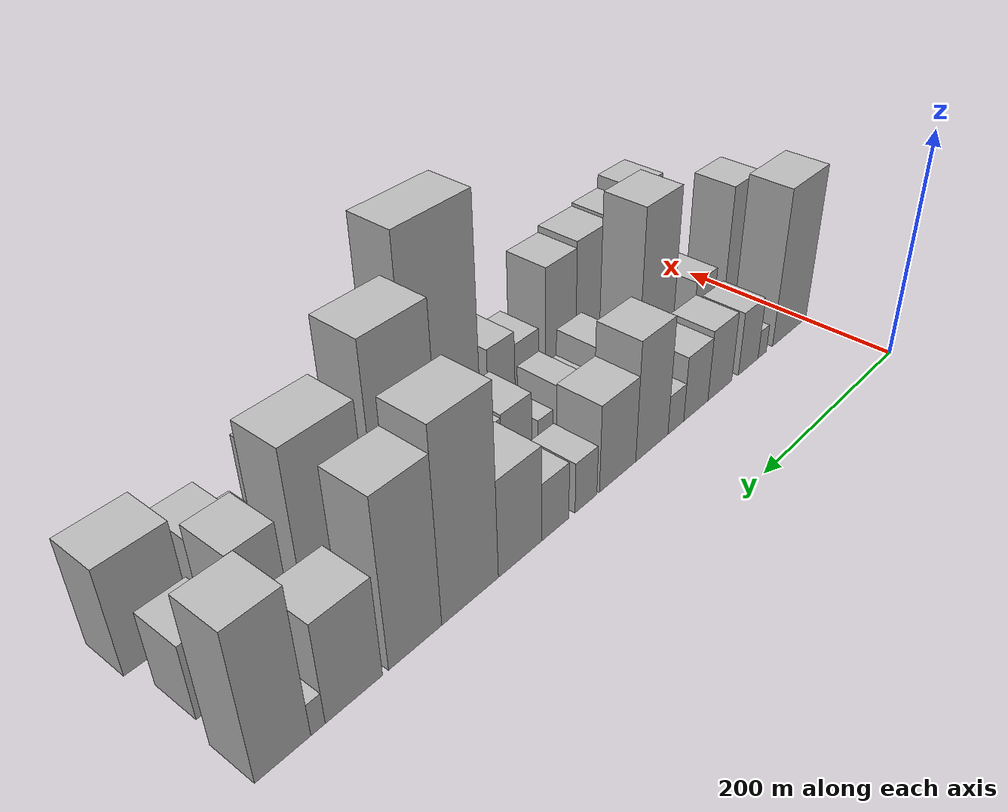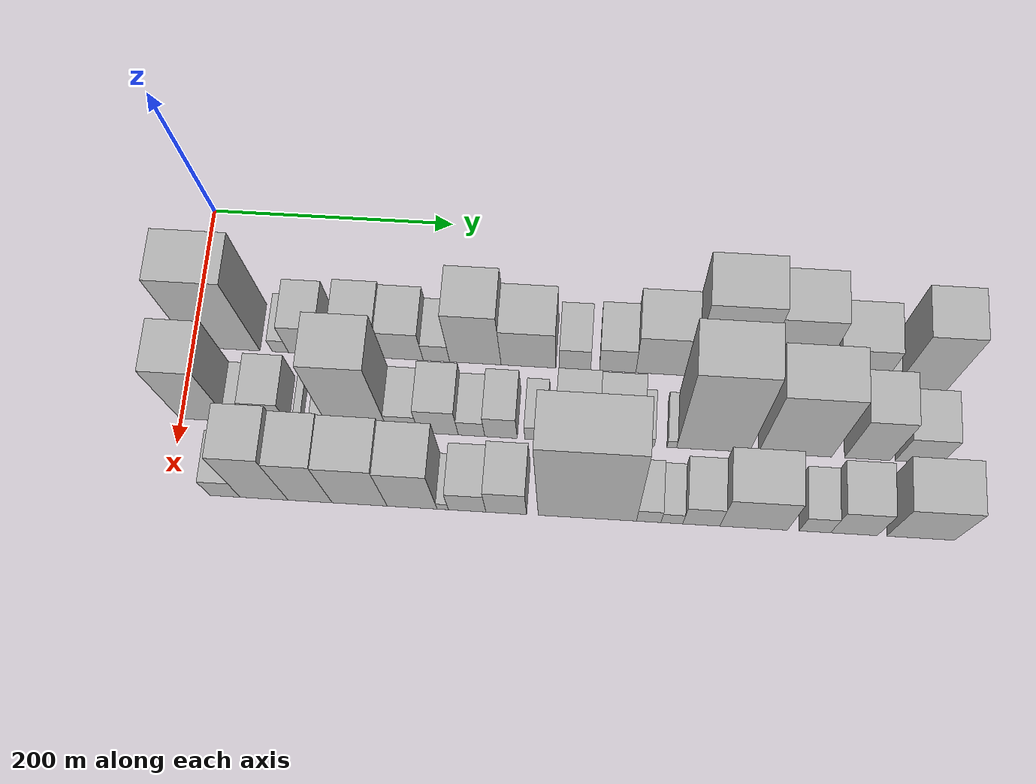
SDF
<sdf version="1.6">
 <world name="default">
  <model name="building_14">
   <static>1</static>
   <pose>100.0000 26.7737 0 0.000000 0.000000 0.000000</pose>
   <link name="link">
    <pose>0 0 73.50 0 0 0</pose>
    <collision name="collision"><geometry><box><size>40.0000 55.8390 147.0000</size></box></geometry></collision>
    <visual name="visual">
     <cast_shadows>0</cast_shadows>
     <geometry><box><size>40.0000 55.8390 147.0000</size></box></geometry>
     <material>
      <script>
       <uri>model://HANNAS_wall/materials/scripts</uri>
       <uri>model://HANNAS_wall/materials/textures</uri>
       <name>vrc/HANNAS_wall</name>
      </script>
     </material>
    </visual>
   </link>
  </model>
  <model name="building_15">
   <static>1</static>
   <pose>100.0000 71.2728 0 0.000000 0.000000 0.000000</pose>
   <link name="link">
    <pose>0 0 13.50 0 0 0</pose>
    <collision name="collision"><geometry><box><size>40.0000 13.1591 27.0000</size></box></geometry></collision>
    <visual name="visual">
     <cast_shadows>0</cast_shadows>
     <geometry><box><size>40.0000 13.1591 27.0000</size></box></geometry>
     <material>
      <script>
       <uri>model://HANNAS_wall/materials/scripts</uri>
       <uri>model://HANNAS_wall/materials/textures</uri>
       <name>vrc/HANNAS_wall</name>
      </script>
     </material>
    </visual>
   </link>
  </model>
  <model name="building_16">
   <static>1</static>
   <pose>100.0000 93.0331 0 0.000000 0.000000 0.000000</pose>
   <link name="link">
    <pose>0 0 30.00 0 0 0</pose>
    <collision name="collision"><geometry><box><size>40.0000 30.3615 60.0000</size></box></geometry></collision>
    <visual name="visual">
     <cast_shadows>0</cast_shadows>
     <geometry><box><size>40.0000 30.3615 60.0000</size></box></geometry>
     <material>
      <script>
       <uri>model://HANNAS_wall/materials/scripts</uri>
       <uri>model://HANNAS_wall/materials/textures</uri>
       <name>vrc/HANNAS_wall</name>
      </script>
     </material>
    </visual>
   </link>
  </model>
  <model name="building_17">
   <static>1</static>
   <pose>100.0000 135.6121 0 0.000000 0.000000 0.000000</pose>
   <link name="link">
    <pose>0 0 33.00 0 0 0</pose>
    <collision name="collision"><geometry><box><size>40.0000 34.7966 66.0000</size></box></geometry></collision>
    <visual name="visual">
     <cast_shadows>0</cast_shadows>
     <geometry><box><size>40.0000 34.7966 66.0000</size></box></geometry>
     <material>
      <script>
       <uri>model://HANNAS_wall/materials/scripts</uri>
       <uri>model://HANNAS_wall/materials/textures</uri>
       <name>vrc/HANNAS_wall</name>
      </script>
     </material>
    </visual>
   </link>
  </model>
  <model name="building_18">
   <static>1</static>
   <pose>100.0000 169.8509 0 0.000000 0.000000 0.000000</pose>
   <link name="link">
    <pose>0 0 30.00 0 0 0</pose>
    <collision name="collision"><geometry><box><size>40.0000 33.6808 60.0000</size></box></geometry></collision>
    <visual name="visual">
     <cast_shadows>0</cast_shadows>
     <geometry><box><size>40.0000 33.6808 60.0000</size></box></geometry>
     <material>
      <script>
       <uri>model://HANNAS_wall/materials/scripts</uri>
       <uri>model://HANNAS_wall/materials/textures</uri>
       <name>vrc/HANNAS_wall</name>
      </script>
     </material>
    </visual>
   </link>
  </model>
  <model name="building_19">
   <static>1</static>
   <pose>100.0000 197.3704 0 0.000000 0.000000 0.000000</pose>
   <link name="link">
    <pose>0 0 18.00 0 0 0</pose>
    <collision name="collision"><geometry><box><size>40.0000 21.3583 36.0000</size></box></geometry></collision>
    <visual name="visual">
     <cast_shadows>0</cast_shadows>
     <geometry><box><size>40.0000 21.3583 36.0000</size></box></geometry>
     <material>
      <script>
       <uri>model://HANNAS_wall/materials/scripts</uri>
       <uri>model://HANNAS_wall/materials/textures</uri>
       <name>vrc/HANNAS_wall</name>
      </script>
     </material>
    </visual>
   </link>
  </model>
  <model name="building_20">
   <static>1</static>
   <pose>100.0000 228.7402 0 0.000000 0.000000 0.000000</pose>
   <link name="link">
    <pose>0 0 54.00 0 0 0</pose>
    <collision name="collision"><geometry><box><size>40.0000 41.3813 108.0000</size></box></geometry></collision>
    <visual name="visual">
     <cast_shadows>0</cast_shadows>
     <geometry><box><size>40.0000 41.3813 108.0000</size></box></geometry>
     <material>
      <script>
       <uri>model://HANNAS_wall/materials/scripts</uri>
       <uri>model://HANNAS_wall/materials/textures</uri>
       <name>vrc/HANNAS_wall</name>
      </script>
     </material>
    </visual>
   </link>
  </model>
  <model name="building_21">
   <static>1</static>
   <pose>100.0000 271.4339 0 0.000000 0.000000 0.000000</pose>
   <link name="link">
    <pose>0 0 39.00 0 0 0</pose>
    <collision name="collision"><geometry><box><size>40.0000 44.0061 78.0000</size></box></geometry></collision>
    <visual name="visual">
     <cast_shadows>0</cast_shadows>
     <geometry><box><size>40.0000 44.0061 78.0000</size></box></geometry>
     <material>
      <script>
       <uri>model://HANNAS_wall/materials/scripts</uri>
       <uri>model://HANNAS_wall/materials/textures</uri>
       <name>vrc/HANNAS_wall</name>
      </script>
     </material>
    </visual>
   </link>
  </model>
  <model name="building_22">
   <static>1</static>
   <pose>100.0000 308.9421 0 0.000000 0.000000 0.000000</pose>
   <link name="link">
    <pose>0 0 22.50 0 0 0</pose>
    <collision name="collision"><geometry><box><size>40.0000 25.0101 45.0000</size></box></geometry></collision>
    <visual name="visual">
     <cast_shadows>0</cast_shadows>
     <geometry><box><size>40.0000 25.0101 45.0000</size></box></geometry>
     <material>
      <script>
       <uri>model://HANNAS_wall/materials/scripts</uri>
       <uri>model://HANNAS_wall/materials/textures</uri>
       <name>vrc/HANNAS_wall</name>
      </script>
     </material>
    </visual>
   </link>
  </model>
  <model name="building_23">
   <static>1</static>
   <pose>100.0000 343.0104 0 0.000000 0.000000 0.000000</pose>
   <link name="link">
    <pose>0 0 25.50 0 0 0</pose>
    <collision name="collision"><geometry><box><size>40.0000 29.1266 51.0000</size></box></geometry></collision>
    <visual name="visual">
     <cast_shadows>0</cast_shadows>
     <geometry><box><size>40.0000 29.1266 51.0000</size></box></geometry>
     <material>
      <script>
       <uri>model://HANNAS_wall/materials/scripts</uri>
       <uri>model://HANNAS_wall/materials/textures</uri>
       <name>vrc/HANNAS_wall</name>
      </script>
     </material>
    </visual>
   </link>
  </model>
  <model name="building_24">
   <static>1</static>
   <pose>100.0000 380.0069 0 0.000000 0.000000 0.000000</pose>
   <link name="link">
    <pose>0 0 42.00 0 0 0</pose>
    <collision name="collision"><geometry><box><size>40.0000 44.8663 84.0000</size></box></geometry></collision>
    <visual name="visual">
     <cast_shadows>0</cast_shadows>
     <geometry><box><size>40.0000 44.8663 84.0000</size></box></geometry>
     <material>
      <script>
       <uri>model://HANNAS_wall/materials/scripts</uri>
       <uri>model://HANNAS_wall/materials/textures</uri>
       <name>vrc/HANNAS_wall</name>
      </script>
     </material>
    </visual>
   </link>
  </model>
  <model name="building_25">
   <static>1</static>
   <pose>100.0000 429.3852 0 0.000000 0.000000 0.000000</pose>
   <link name="link">
    <pose>0 0 81.00 0 0 0</pose>
    <collision name="collision"><geometry><box><size>40.0000 53.8903 162.0000</size></box></geometry></collision>
    <visual name="visual">
     <cast_shadows>0</cast_shadows>
     <geometry><box><size>40.0000 53.8903 162.0000</size></box></geometry>
     <material>
      <script>
       <uri>model://HANNAS_wall/materials/scripts</uri>
       <uri>model://HANNAS_wall/materials/textures</uri>
       <name>vrc/HANNAS_wall</name>
      </script>
     </material>
    </visual>
   </link>
  </model>
  <model name="building_26">
   <static>1</static>
   <pose>100.0000 479.6066 0 0.000000 0.000000 0.000000</pose>
   <link name="link">
    <pose>0 0 70.50 0 0 0</pose>
    <collision name="collision"><geometry><box><size>40.0000 46.5524 141.0000</size></box></geometry></collision>
    <visual name="visual">
     <cast_shadows>0</cast_shadows>
     <geometry><box><size>40.0000 46.5524 141.0000</size></box></geometry>
     <material>
      <script>
       <uri>model://HANNAS_wall/materials/scripts</uri>
       <uri>model://HANNAS_wall/materials/textures</uri>
       <name>vrc/HANNAS_wall</name>
      </script>
     </material>
    </visual>
   </link>
  </model>
  <model name="building_27">
   <static>1</static>
   <pose>100.0000 530.8130 0 0.000000 0.000000 0.000000</pose>
   <link name="link">
    <pose>0 0 42.00 0 0 0</pose>
    <collision name="collision"><geometry><box><size>40.0000 45.8605 84.0000</size></box></geometry></collision>
    <visual name="visual">
     <cast_shadows>0</cast_shadows>
     <geometry><box><size>40.0000 45.8605 84.0000</size></box></geometry>
     <material>
      <script>
       <uri>model://HANNAS_wall/materials/scripts</uri>
       <uri>model://HANNAS_wall/materials/textures</uri>
       <name>vrc/HANNAS_wall</name>
      </script>
     </material>
    </visual>
   </link>
  </model>
  <model name="building_28">
   <static>1</static>
   <pose>100.0000 559.2365 0 0.000000 0.000000 0.000000</pose>
   <link name="link">
    <pose>0 0 13.50 0 0 0</pose>
    <collision name="collision"><geometry><box><size>40.0000 10.9863 27.0000</size></box></geometry></collision>
    <visual name="visual">
     <cast_shadows>0</cast_shadows>
     <geometry><box><size>40.0000 10.9863 27.0000</size></box></geometry>
     <material>
      <script>
       <uri>model://HANNAS_wall/materials/scripts</uri>
       <uri>model://HANNAS_wall/materials/textures</uri>
       <name>vrc/HANNAS_wall</name>
      </script>
     </material>
    </visual>
   </link>
  </model>
  <model name="building_29">
   <static>1</static>
   <pose>100.0000 585.1890 0 0.000000 0.000000 0.000000</pose>
   <link name="link">
    <pose>0 0 61.50 0 0 0</pose>
    <collision name="collision"><geometry><box><size>40.0000 40.9187 123.0000</size></box></geometry></collision>
    <visual name="visual">
     <cast_shadows>0</cast_shadows>
     <geometry><box><size>40.0000 40.9187 123.0000</size></box></geometry>
     <material>
      <script>
       <uri>model://HANNAS_wall/materials/scripts</uri>
       <uri>model://HANNAS_wall/materials/textures</uri>
       <name>vrc/HANNAS_wall</name>
      </script>
     </material>
    </visual>
   </link>
  </model>
  <model name="building_48">
   <static>1</static>
   <pose>160.0000 18.8097 0 0.000000 0.000000 0.000000</pose>
   <link name="link">
    <pose>0 0 61.50 0 0 0</pose>
    <collision name="collision"><geometry><box><size>40.0000 39.7857 123.0000</size></box></geometry></collision>
    <visual name="visual">
     <cast_shadows>0</cast_shadows>
     <geometry><box><size>40.0000 39.7857 123.0000</size></box></geometry>
     <material>
      <script>
       <uri>model://HANNAS_wall/materials/scripts</uri>
       <uri>model://HANNAS_wall/materials/textures</uri>
       <name>vrc/HANNAS_wall</name>
      </script>
     </material>
    </visual>
   </link>
  </model>
  <model name="building_49">
   <static>1</static>
   <pose>160.0000 46.6663 0 0.000000 0.000000 0.000000</pose>
   <link name="link">
    <pose>0 0 15.00 0 0 0</pose>
    <collision name="collision"><geometry><box><size>40.0000 15.9276 30.0000</size></box></geometry></collision>
    <visual name="visual">
     <cast_shadows>0</cast_shadows>
     <geometry><box><size>40.0000 15.9276 30.0000</size></box></geometry>
     <material>
      <script>
       <uri>model://HANNAS_wall/materials/scripts</uri>
       <uri>model://HANNAS_wall/materials/textures</uri>
       <name>vrc/HANNAS_wall</name>
      </script>
     </material>
    </visual>
   </link>
  </model>
  <model name="building_50">
   <static>1</static>
   <pose>160.0000 70.1000 0 0.000000 0.000000 0.000000</pose>
   <link name="link">
    <pose>0 0 27.00 0 0 0</pose>
    <collision name="collision"><geometry><box><size>40.0000 30.9397 54.0000</size></box></geometry></collision>
    <visual name="visual">
     <cast_shadows>0</cast_shadows>
     <geometry><box><size>40.0000 30.9397 54.0000</size></box></geometry>
     <material>
      <script>
       <uri>model://HANNAS_wall/materials/scripts</uri>
       <uri>model://HANNAS_wall/materials/textures</uri>
       <name>vrc/HANNAS_wall</name>
      </script>
     </material>
    </visual>
   </link>
  </model>
  <model name="building_51">
   <static>1</static>
   <pose>160.0000 93.6140 0 0.000000 0.000000 0.000000</pose>
   <link name="link">
    <pose>0 0 7.50 0 0 0</pose>
    <collision name="collision"><geometry><box><size>40.0000 6.0884 15.0000</size></box></geometry></collision>
    <visual name="visual">
     <cast_shadows>0</cast_shadows>
     <geometry><box><size>40.0000 6.0884 15.0000</size></box></geometry>
     <material>
      <script>
       <uri>model://HANNAS_wall/materials/scripts</uri>
       <uri>model://HANNAS_wall/materials/textures</uri>
       <name>vrc/HANNAS_wall</name>
      </script>
     </material>
    </visual>
   </link>
  </model>
  <model name="building_52">
   <static>1</static>
   <pose>160.0000 111.6287 0 0.000000 0.000000 0.000000</pose>
   <link name="link">
    <pose>0 0 13.50 0 0 0</pose>
    <collision name="collision"><geometry><box><size>40.0000 11.9409 27.0000</size></box></geometry></collision>
    <visual name="visual">
     <cast_shadows>0</cast_shadows>
     <geometry><box><size>40.0000 11.9409 27.0000</size></box></geometry>
     <material>
      <script>
       <uri>model://HANNAS_wall/materials/scripts</uri>
       <uri>model://HANNAS_wall/materials/textures</uri>
       <name>vrc/HANNAS_wall</name>
      </script>
     </material>
    </visual>
   </link>
  </model>
  <model name="building_53">
   <static>1</static>
   <pose>160.0000 141.1438 0 0.000000 0.000000 0.000000</pose>
   <link name="link">
    <pose>0 0 78.00 0 0 0</pose>
    <collision name="collision"><geometry><box><size>40.0000 47.0895 156.0000</size></box></geometry></collision>
    <visual name="visual">
     <cast_shadows>0</cast_shadows>
     <geometry><box><size>40.0000 47.0895 156.0000</size></box></geometry>
     <material>
      <script>
       <uri>model://HANNAS_wall/materials/scripts</uri>
       <uri>model://HANNAS_wall/materials/textures</uri>
       <name>vrc/HANNAS_wall</name>
      </script>
     </material>
    </visual>
   </link>
  </model>
  <model name="building_54">
   <static>1</static>
   <pose>160.0000 176.7799 0 0.000000 0.000000 0.000000</pose>
   <link name="link">
    <pose>0 0 21.00 0 0 0</pose>
    <collision name="collision"><geometry><box><size>40.0000 24.1828 42.0000</size></box></geometry></collision>
    <visual name="visual">
     <cast_shadows>0</cast_shadows>
     <geometry><box><size>40.0000 24.1828 42.0000</size></box></geometry>
     <material>
      <script>
       <uri>model://HANNAS_wall/materials/scripts</uri>
       <uri>model://HANNAS_wall/materials/textures</uri>
       <name>vrc/HANNAS_wall</name>
      </script>
     </material>
    </visual>
   </link>
  </model>
  <model name="building_55">
   <static>1</static>
   <pose>160.0000 204.5250 0 0.000000 0.000000 0.000000</pose>
   <link name="link">
    <pose>0 0 30.00 0 0 0</pose>
    <collision name="collision"><geometry><box><size>40.0000 31.3073 60.0000</size></box></geometry></collision>
    <visual name="visual">
     <cast_shadows>0</cast_shadows>
     <geometry><box><size>40.0000 31.3073 60.0000</size></box></geometry>
     <material>
      <script>
       <uri>model://HANNAS_wall/materials/scripts</uri>
       <uri>model://HANNAS_wall/materials/textures</uri>
       <name>vrc/HANNAS_wall</name>
      </script>
     </material>
    </visual>
   </link>
  </model>
  <model name="building_56">
   <static>1</static>
   <pose>160.0000 230.6646 0 0.000000 0.000000 0.000000</pose>
   <link name="link">
    <pose>0 0 18.00 0 0 0</pose>
    <collision name="collision"><geometry><box><size>40.0000 20.9721 36.0000</size></box></geometry></collision>
    <visual name="visual">
     <cast_shadows>0</cast_shadows>
     <geometry><box><size>40.0000 20.9721 36.0000</size></box></geometry>
     <material>
      <script>
       <uri>model://HANNAS_wall/materials/scripts</uri>
       <uri>model://HANNAS_wall/materials/textures</uri>
       <name>vrc/HANNAS_wall</name>
      </script>
     </material>
    </visual>
   </link>
  </model>
  <model name="building_57">
   <static>1</static>
   <pose>160.0000 253.9590 0 0.000000 0.000000 0.000000</pose>
   <link name="link">
    <pose>0 0 25.50 0 0 0</pose>
    <collision name="collision"><geometry><box><size>40.0000 25.6165 51.0000</size></box></geometry></collision>
    <visual name="visual">
     <cast_shadows>0</cast_shadows>
     <geometry><box><size>40.0000 25.6165 51.0000</size></box></geometry>
     <material>
      <script>
       <uri>model://HANNAS_wall/materials/scripts</uri>
       <uri>model://HANNAS_wall/materials/textures</uri>
       <name>vrc/HANNAS_wall</name>
      </script>
     </material>
    </visual>
   </link>
  </model>
  <model name="building_58">
   <static>1</static>
   <pose>160.0000 281.4547 0 0.000000 0.000000 0.000000</pose>
   <link name="link">
    <pose>0 0 16.50 0 0 0</pose>
    <collision name="collision"><geometry><box><size>40.0000 17.3750 33.0000</size></box></geometry></collision>
    <visual name="visual">
     <cast_shadows>0</cast_shadows>
     <geometry><box><size>40.0000 17.3750 33.0000</size></box></geometry>
     <material>
      <script>
       <uri>model://HANNAS_wall/materials/scripts</uri>
       <uri>model://HANNAS_wall/materials/textures</uri>
       <name>vrc/HANNAS_wall</name>
      </script>
     </material>
    </visual>
   </link>
  </model>
  <model name="building_59">
   <static>1</static>
   <pose>160.0000 313.9136 0 0.000000 0.000000 0.000000</pose>
   <link name="link">
    <pose>0 0 31.50 0 0 0</pose>
    <collision name="collision"><geometry><box><size>40.0000 33.5428 63.0000</size></box></geometry></collision>
    <visual name="visual">
     <cast_shadows>0</cast_shadows>
     <geometry><box><size>40.0000 33.5428 63.0000</size></box></geometry>
     <material>
      <script>
       <uri>model://HANNAS_wall/materials/scripts</uri>
       <uri>model://HANNAS_wall/materials/textures</uri>
       <name>vrc/HANNAS_wall</name>
      </script>
     </material>
    </visual>
   </link>
  </model>
  <model name="building_60">
   <static>1</static>
   <pose>160.0000 347.8067 0 0.000000 0.000000 0.000000</pose>
   <link name="link">
    <pose>0 0 30.00 0 0 0</pose>
    <collision name="collision"><geometry><box><size>40.0000 34.2433 60.0000</size></box></geometry></collision>
    <visual name="visual">
     <cast_shadows>0</cast_shadows>
     <geometry><box><size>40.0000 34.2433 60.0000</size></box></geometry>
     <material>
      <script>
       <uri>model://HANNAS_wall/materials/scripts</uri>
       <uri>model://HANNAS_wall/materials/textures</uri>
       <name>vrc/HANNAS_wall</name>
      </script>
     </material>
    </visual>
   </link>
  </model>
  <model name="building_61">
   <static>1</static>
   <pose>160.0000 369.8022 0 0.000000 0.000000 0.000000</pose>
   <link name="link">
    <pose>0 0 10.50 0 0 0</pose>
    <collision name="collision"><geometry><box><size>40.0000 9.7478 21.0000</size></box></geometry></collision>
    <visual name="visual">
     <cast_shadows>0</cast_shadows>
     <geometry><box><size>40.0000 9.7478 21.0000</size></box></geometry>
     <material>
      <script>
       <uri>model://HANNAS_wall/materials/scripts</uri>
       <uri>model://HANNAS_wall/materials/textures</uri>
       <name>vrc/HANNAS_wall</name>
      </script>
     </material>
    </visual>
   </link>
  </model>
  <model name="building_62">
   <static>1</static>
   <pose>160.0000 388.4592 0 0.000000 0.000000 0.000000</pose>
   <link name="link">
    <pose>0 0 9.00 0 0 0</pose>
    <collision name="collision"><geometry><box><size>40.0000 7.5662 18.0000</size></box></geometry></collision>
    <visual name="visual">
     <cast_shadows>0</cast_shadows>
     <geometry><box><size>40.0000 7.5662 18.0000</size></box></geometry>
     <material>
      <script>
       <uri>model://HANNAS_wall/materials/scripts</uri>
       <uri>model://HANNAS_wall/materials/textures</uri>
       <name>vrc/HANNAS_wall</name>
      </script>
     </material>
    </visual>
   </link>
  </model>
  <model name="building_63">
   <static>1</static>
   <pose>160.0000 420.8552 0 0.000000 0.000000 0.000000</pose>
   <link name="link">
    <pose>0 0 94.50 0 0 0</pose>
    <collision name="collision"><geometry><box><size>40.0000 57.2258 189.0000</size></box></geometry></collision>
    <visual name="visual">
     <cast_shadows>0</cast_shadows>
     <geometry><box><size>40.0000 57.2258 189.0000</size></box></geometry>
     <material>
      <script>
       <uri>model://HANNAS_wall/materials/scripts</uri>
       <uri>model://HANNAS_wall/materials/textures</uri>
       <name>vrc/HANNAS_wall</name>
      </script>
     </material>
    </visual>
   </link>
  </model>
  <model name="building_64">
   <static>1</static>
   <pose>160.0000 485.2276 0 0.000000 0.000000 0.000000</pose>
   <link name="link">
    <pose>0 0 75.00 0 0 0</pose>
    <collision name="collision"><geometry><box><size>40.0000 57.5190 150.0000</size></box></geometry></collision>
    <visual name="visual">
     <cast_shadows>0</cast_shadows>
     <geometry><box><size>40.0000 57.5190 150.0000</size></box></geometry>
     <material>
      <script>
       <uri>model://HANNAS_wall/materials/scripts</uri>
       <uri>model://HANNAS_wall/materials/textures</uri>
       <name>vrc/HANNAS_wall</name>
      </script>
     </material>
    </visual>
   </link>
  </model>
  <model name="building_65">
   <static>1</static>
   <pose>160.0000 541.8244 0 0.000000 0.000000 0.000000</pose>
   <link name="link">
    <pose>0 0 51.00 0 0 0</pose>
    <collision name="collision"><geometry><box><size>40.0000 35.6746 102.0000</size></box></geometry></collision>
    <visual name="visual">
     <cast_shadows>0</cast_shadows>
     <geometry><box><size>40.0000 35.6746 102.0000</size></box></geometry>
     <material>
      <script>
       <uri>model://HANNAS_wall/materials/scripts</uri>
       <uri>model://HANNAS_wall/materials/textures</uri>
       <name>vrc/HANNAS_wall</name>
      </script>
     </material>
    </visual>
   </link>
  </model>
  <model name="building_66">
   <static>1</static>
   <pose>160.0000 581.7626 0 0.000000 0.000000 0.000000</pose>
   <link name="link">
    <pose>0 0 31.50 0 0 0</pose>
    <collision name="collision"><geometry><box><size>40.0000 36.2017 63.0000</size></box></geometry></collision>
    <visual name="visual">
     <cast_shadows>0</cast_shadows>
     <geometry><box><size>40.0000 36.2017 63.0000</size></box></geometry>
     <material>
      <script>
       <uri>model://HANNAS_wall/materials/scripts</uri>
       <uri>model://HANNAS_wall/materials/textures</uri>
       <name>vrc/HANNAS_wall</name>
      </script>
     </material>
    </visual>
   </link>
  </model>
  <model name="building_87">
   <static>1</static>
   <pose>220.0000 43.8679 0 0.000000 0.000000 0.000000</pose>
   <link name="link">
    <pose>0 0 22.50 0 0 0</pose>
    <collision name="collision"><geometry><box><size>40.0000 23.6869 45.0000</size></box></geometry></collision>
    <visual name="visual">
     <cast_shadows>0</cast_shadows>
     <geometry><box><size>40.0000 23.6869 45.0000</size></box></geometry>
     <material>
      <script>
       <uri>model://HANNAS_wall/materials/scripts</uri>
       <uri>model://HANNAS_wall/materials/textures</uri>
       <name>vrc/HANNAS_wall</name>
      </script>
     </material>
    </visual>
   </link>
  </model>
  <model name="building_88">
   <static>1</static>
   <pose>220.0000 74.3297 0 0.000000 0.000000 0.000000</pose>
   <link name="link">
    <pose>0 0 61.50 0 0 0</pose>
    <collision name="collision"><geometry><box><size>40.0000 37.2367 123.0000</size></box></geometry></collision>
    <visual name="visual">
     <cast_shadows>0</cast_shadows>
     <geometry><box><size>40.0000 37.2367 123.0000</size></box></geometry>
     <material>
      <script>
       <uri>model://HANNAS_wall/materials/scripts</uri>
       <uri>model://HANNAS_wall/materials/textures</uri>
       <name>vrc/HANNAS_wall</name>
      </script>
     </material>
    </visual>
   </link>
  </model>
  <model name="building_89">
   <static>1</static>
   <pose>220.0000 110.1123 0 0.000000 0.000000 0.000000</pose>
   <link name="link">
    <pose>0 0 55.50 0 0 0</pose>
    <collision name="collision"><geometry><box><size>40.0000 34.3286 111.0000</size></box></geometry></collision>
    <visual name="visual">
     <cast_shadows>0</cast_shadows>
     <geometry><box><size>40.0000 34.3286 111.0000</size></box></geometry>
     <material>
      <script>
       <uri>model://HANNAS_wall/materials/scripts</uri>
       <uri>model://HANNAS_wall/materials/textures</uri>
       <name>vrc/HANNAS_wall</name>
      </script>
     </material>
    </visual>
   </link>
  </model>
  <model name="building_90">
   <static>1</static>
   <pose>220.0000 148.7265 0 0.000000 0.000000 0.000000</pose>
   <link name="link">
    <pose>0 0 54.00 0 0 0</pose>
    <collision name="collision"><geometry><box><size>40.0000 42.8998 108.0000</size></box></geometry></collision>
    <visual name="visual">
     <cast_shadows>0</cast_shadows>
     <geometry><box><size>40.0000 42.8998 108.0000</size></box></geometry>
     <material>
      <script>
       <uri>model://HANNAS_wall/materials/scripts</uri>
       <uri>model://HANNAS_wall/materials/textures</uri>
       <name>vrc/HANNAS_wall</name>
      </script>
     </material>
    </visual>
   </link>
  </model>
  <model name="building_91">
   <static>1</static>
   <pose>220.0000 189.5593 0 0.000000 0.000000 0.000000</pose>
   <link name="link">
    <pose>0 0 51.00 0 0 0</pose>
    <collision name="collision"><geometry><box><size>40.0000 38.7658 102.0000</size></box></geometry></collision>
    <visual name="visual">
     <cast_shadows>0</cast_shadows>
     <geometry><box><size>40.0000 38.7658 102.0000</size></box></geometry>
     <material>
      <script>
       <uri>model://HANNAS_wall/materials/scripts</uri>
       <uri>model://HANNAS_wall/materials/textures</uri>
       <name>vrc/HANNAS_wall</name>
      </script>
     </material>
    </visual>
   </link>
  </model>
  <model name="building_92">
   <static>1</static>
   <pose>220.0000 213.3253 0 0.000000 0.000000 0.000000</pose>
   <link name="link">
    <pose>0 0 9.00 0 0 0</pose>
    <collision name="collision"><geometry><box><size>40.0000 8.7662 18.0000</size></box></geometry></collision>
    <visual name="visual">
     <cast_shadows>0</cast_shadows>
     <geometry><box><size>40.0000 8.7662 18.0000</size></box></geometry>
     <material>
      <script>
       <uri>model://HANNAS_wall/materials/scripts</uri>
       <uri>model://HANNAS_wall/materials/textures</uri>
       <name>vrc/HANNAS_wall</name>
      </script>
     </material>
    </visual>
   </link>
  </model>
  <model name="building_93">
   <static>1</static>
   <pose>220.0000 232.2780 0 0.000000 0.000000 0.000000</pose>
   <link name="link">
    <pose>0 0 25.50 0 0 0</pose>
    <collision name="collision"><geometry><box><size>40.0000 29.1391 51.0000</size></box></geometry></collision>
    <visual name="visual">
     <cast_shadows>0</cast_shadows>
     <geometry><box><size>40.0000 29.1391 51.0000</size></box></geometry>
     <material>
      <script>
       <uri>model://HANNAS_wall/materials/scripts</uri>
       <uri>model://HANNAS_wall/materials/textures</uri>
       <name>vrc/HANNAS_wall</name>
      </script>
     </material>
    </visual>
   </link>
  </model>
  <model name="building_94">
   <static>1</static>
   <pose>220.0000 262.6027 0 0.000000 0.000000 0.000000</pose>
   <link name="link">
    <pose>0 0 31.50 0 0 0</pose>
    <collision name="collision"><geometry><box><size>40.0000 31.5104 63.0000</size></box></geometry></collision>
    <visual name="visual">
     <cast_shadows>0</cast_shadows>
     <geometry><box><size>40.0000 31.5104 63.0000</size></box></geometry>
     <material>
      <script>
       <uri>model://HANNAS_wall/materials/scripts</uri>
       <uri>model://HANNAS_wall/materials/textures</uri>
       <name>vrc/HANNAS_wall</name>
      </script>
     </material>
    </visual>
   </link>
  </model>
  <model name="building_95">
   <static>1</static>
   <pose>220.0000 325.3508 0 0.000000 0.000000 0.000000</pose>
   <link name="link">
    <pose>0 0 100.50 0 0 0</pose>
    <collision name="collision"><geometry><box><size>40.0000 75.9857 201.0000</size></box></geometry></collision>
    <visual name="visual">
     <cast_shadows>0</cast_shadows>
     <geometry><box><size>40.0000 75.9857 201.0000</size></box></geometry>
     <material>
      <script>
       <uri>model://HANNAS_wall/materials/scripts</uri>
       <uri>model://HANNAS_wall/materials/textures</uri>
       <name>vrc/HANNAS_wall</name>
      </script>
     </material>
    </visual>
   </link>
  </model>
  <model name="building_96">
   <static>1</static>
   <pose>220.0000 372.8137 0 0.000000 0.000000 0.000000</pose>
   <link name="link">
    <pose>0 0 18.00 0 0 0</pose>
    <collision name="collision"><geometry><box><size>40.0000 18.9401 36.0000</size></box></geometry></collision>
    <visual name="visual">
     <cast_shadows>0</cast_shadows>
     <geometry><box><size>40.0000 18.9401 36.0000</size></box></geometry>
     <material>
      <script>
       <uri>model://HANNAS_wall/materials/scripts</uri>
       <uri>model://HANNAS_wall/materials/textures</uri>
       <name>vrc/HANNAS_wall</name>
      </script>
     </material>
    </visual>
   </link>
  </model>
  <model name="building_97">
   <static>1</static>
   <pose>220.0000 390.6367 0 0.000000 0.000000 0.000000</pose>
   <link name="link">
    <pose>0 0 15.00 0 0 0</pose>
    <collision name="collision"><geometry><box><size>40.0000 16.7061 30.0000</size></box></geometry></collision>
    <visual name="visual">
     <cast_shadows>0</cast_shadows>
     <geometry><box><size>40.0000 16.7061 30.0000</size></box></geometry>
     <material>
      <script>
       <uri>model://HANNAS_wall/materials/scripts</uri>
       <uri>model://HANNAS_wall/materials/textures</uri>
       <name>vrc/HANNAS_wall</name>
      </script>
     </material>
    </visual>
   </link>
  </model>
  <model name="building_98">
   <static>1</static>
   <pose>220.0000 413.2838 0 0.000000 0.000000 0.000000</pose>
   <link name="link">
    <pose>0 0 27.00 0 0 0</pose>
    <collision name="collision"><geometry><box><size>40.0000 28.5881 54.0000</size></box></geometry></collision>
    <visual name="visual">
     <cast_shadows>0</cast_shadows>
     <geometry><box><size>40.0000 28.5881 54.0000</size></box></geometry>
     <material>
      <script>
       <uri>model://HANNAS_wall/materials/scripts</uri>
       <uri>model://HANNAS_wall/materials/textures</uri>
       <name>vrc/HANNAS_wall</name>
      </script>
     </material>
    </visual>
   </link>
  </model>
  <model name="building_99">
   <static>1</static>
   <pose>220.0000 453.6700 0 0.000000 0.000000 0.000000</pose>
   <link name="link">
    <pose>0 0 43.50 0 0 0</pose>
    <collision name="collision"><geometry><box><size>40.0000 52.1843 87.0000</size></box></geometry></collision>
    <visual name="visual">
     <cast_shadows>0</cast_shadows>
     <geometry><box><size>40.0000 52.1843 87.0000</size></box></geometry>
     <material>
      <script>
       <uri>model://HANNAS_wall/materials/scripts</uri>
       <uri>model://HANNAS_wall/materials/textures</uri>
       <name>vrc/HANNAS_wall</name>
      </script>
     </material>
    </visual>
   </link>
  </model>
  <model name="building_100">
   <static>1</static>
   <pose>220.0000 500.8323 0 0.000000 0.000000 0.000000</pose>
   <link name="link">
    <pose>0 0 22.50 0 0 0</pose>
    <collision name="collision"><geometry><box><size>40.0000 24.1402 45.0000</size></box></geometry></collision>
    <visual name="visual">
     <cast_shadows>0</cast_shadows>
     <geometry><box><size>40.0000 24.1402 45.0000</size></box></geometry>
     <material>
      <script>
       <uri>model://HANNAS_wall/materials/scripts</uri>
       <uri>model://HANNAS_wall/materials/textures</uri>
       <name>vrc/HANNAS_wall</name>
      </script>
     </material>
    </visual>
   </link>
  </model>
  <model name="building_101">
   <static>1</static>
   <pose>220.0000 530.9163 0 0.000000 0.000000 0.000000</pose>
   <link name="link">
    <pose>0 0 34.50 0 0 0</pose>
    <collision name="collision"><geometry><box><size>40.0000 36.0278 69.0000</size></box></geometry></collision>
    <visual name="visual">
     <cast_shadows>0</cast_shadows>
     <geometry><box><size>40.0000 36.0278 69.0000</size></box></geometry>
     <material>
      <script>
       <uri>model://HANNAS_wall/materials/scripts</uri>
       <uri>model://HANNAS_wall/materials/textures</uri>
       <name>vrc/HANNAS_wall</name>
      </script>
     </material>
    </visual>
   </link>
  </model>
  <model name="building_102">
   <static>1</static>
   <pose>220.0000 581.9983 0 0.000000 0.000000 0.000000</pose>
   <link name="link">
    <pose>0 0 45.00 0 0 0</pose>
    <collision name="collision"><geometry><box><size>40.0000 52.1363 90.0000</size></box></geometry></collision>
    <visual name="visual">
     <cast_shadows>0</cast_shadows>
     <geometry><box><size>40.0000 52.1363 90.0000</size></box></geometry>
     <material>
      <script>
       <uri>model://HANNAS_wall/materials/scripts</uri>
       <uri>model://HANNAS_wall/materials/textures</uri>
       <name>vrc/HANNAS_wall</name>
      </script>
     </material>
    </visual>
   </link>
  </model>
 </world>
</sdf>
